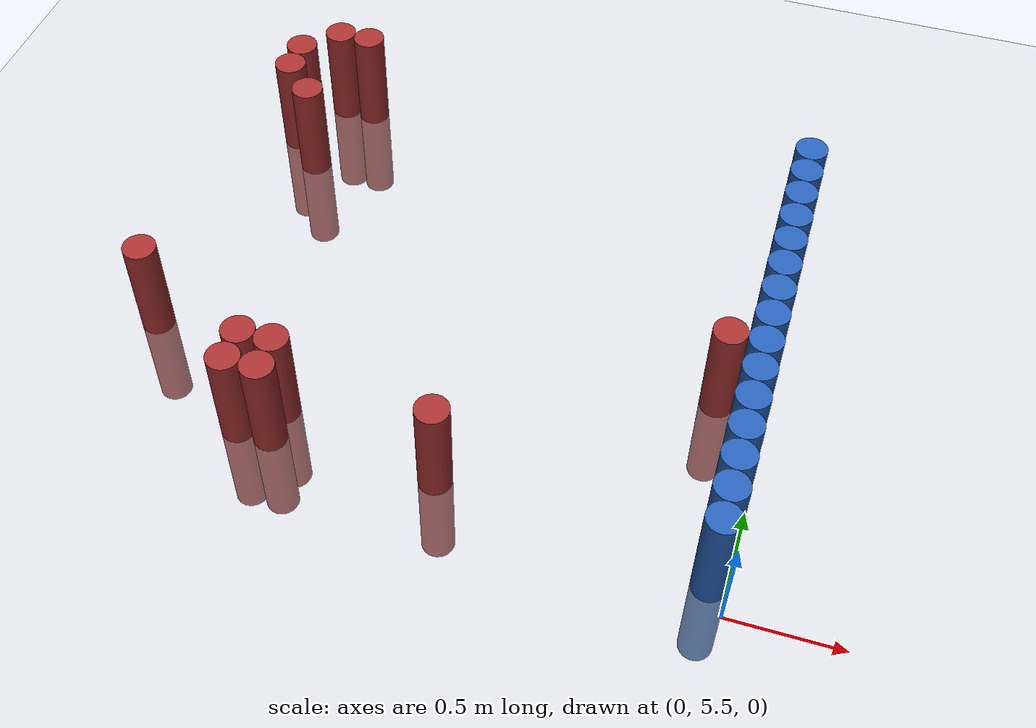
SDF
<sdf version="1.6">
 <world name="world_197">
  <model name="ground_plane">
   <static>1</static>
   <link name="link">
    <collision name="collision">
     <geometry><plane><normal>0 0 1</normal><size>100 100</size></plane></geometry>
     <surface><friction><ode><mu>100</mu><mu2>50</mu2></ode></friction></surface>
    </collision>
    <visual name="visual">
     <cast_shadows>0</cast_shadows>
     <geometry><plane><normal>0 0 1</normal><size>100 100</size></plane></geometry>
     <material>
      <script><uri>file://media/materials/scripts/gazebo.material</uri><name>Gazebo/Grey</name></script>
     </material>
    </visual>
   </link>
  </model>
  <model name="unit_cylinder_154">
   <static>1</static>
   <pose>-2.775000 6.225000 0.000000 0.000000 0.000000 0.000000</pose>
   <link name="link">
    <inertial>
     <mass>1</mass>
     <inertia><ixx>0.145833</ixx><ixy>0</ixy><ixz>0</ixz><iyy>0.145833</iyy><iyz>0</iyz><izz>0.125</izz></inertia>
    </inertial>
    <collision name="collision">
     <geometry><cylinder><radius>0.075000</radius><length>1</length></cylinder></geometry>
    </collision>
    <visual name="visual">
     <geometry><cylinder><radius>0.075000</radius><length>1</length></cylinder></geometry>
     <material>
      <ambient>0.648000 0.192000 0.192000 1</ambient>
      <diffuse>0.648000 0.192000 0.192000 1</diffuse>
     </material>
     <material>
      <script><name>Gazebo/Grey</name><uri>file://media/materials/scripts/gazebo.material</uri></script>
     </material>
    </visual>
   </link>
  </model>
  <model name="unit_cylinder_155">
   <static>1</static>
   <pose>-2.625000 7.575000 0.000000 0.000000 0.000000 0.000000</pose>
   <link name="link">
    <inertial>
     <mass>1</mass>
     <inertia><ixx>0.145833</ixx><ixy>0</ixy><ixz>0</ixz><iyy>0.145833</iyy><iyz>0</iyz><izz>0.125</izz></inertia>
    </inertial>
    <collision name="collision">
     <geometry><cylinder><radius>0.075000</radius><length>1</length></cylinder></geometry>
    </collision>
    <visual name="visual">
     <geometry><cylinder><radius>0.075000</radius><length>1</length></cylinder></geometry>
     <material>
      <ambient>0.648000 0.192000 0.192000 1</ambient>
      <diffuse>0.648000 0.192000 0.192000 1</diffuse>
     </material>
     <material>
      <script><name>Gazebo/Grey</name><uri>file://media/materials/scripts/gazebo.material</uri></script>
     </material>
    </visual>
   </link>
  </model>
  <model name="unit_cylinder_156">
   <static>1</static>
   <pose>-2.625000 7.725000 0.000000 0.000000 0.000000 0.000000</pose>
   <link name="link">
    <inertial>
     <mass>1</mass>
     <inertia><ixx>0.145833</ixx><ixy>0</ixy><ixz>0</ixz><iyy>0.145833</iyy><iyz>0</iyz><izz>0.125</izz></inertia>
    </inertial>
    <collision name="collision">
     <geometry><cylinder><radius>0.075000</radius><length>1</length></cylinder></geometry>
    </collision>
    <visual name="visual">
     <geometry><cylinder><radius>0.075000</radius><length>1</length></cylinder></geometry>
     <material>
      <ambient>0.648000 0.192000 0.192000 1</ambient>
      <diffuse>0.648000 0.192000 0.192000 1</diffuse>
     </material>
     <material>
      <script><name>Gazebo/Grey</name><uri>file://media/materials/scripts/gazebo.material</uri></script>
     </material>
    </visual>
   </link>
  </model>
  <model name="unit_cylinder_157">
   <static>1</static>
   <pose>-2.475000 7.425000 0.000000 0.000000 0.000000 0.000000</pose>
   <link name="link">
    <inertial>
     <mass>1</mass>
     <inertia><ixx>0.145833</ixx><ixy>0</ixy><ixz>0</ixz><iyy>0.145833</iyy><iyz>0</iyz><izz>0.125</izz></inertia>
    </inertial>
    <collision name="collision">
     <geometry><cylinder><radius>0.075000</radius><length>1</length></cylinder></geometry>
    </collision>
    <visual name="visual">
     <geometry><cylinder><radius>0.075000</radius><length>1</length></cylinder></geometry>
     <material>
      <ambient>0.648000 0.192000 0.192000 1</ambient>
      <diffuse>0.648000 0.192000 0.192000 1</diffuse>
     </material>
     <material>
      <script><name>Gazebo/Grey</name><uri>file://media/materials/scripts/gazebo.material</uri></script>
     </material>
    </visual>
   </link>
  </model>
  <model name="unit_cylinder_158">
   <static>1</static>
   <pose>-2.475000 7.875000 0.000000 0.000000 0.000000 0.000000</pose>
   <link name="link">
    <inertial>
     <mass>1</mass>
     <inertia><ixx>0.145833</ixx><ixy>0</ixy><ixz>0</ixz><iyy>0.145833</iyy><iyz>0</iyz><izz>0.125</izz></inertia>
    </inertial>
    <collision name="collision">
     <geometry><cylinder><radius>0.075000</radius><length>1</length></cylinder></geometry>
    </collision>
    <visual name="visual">
     <geometry><cylinder><radius>0.075000</radius><length>1</length></cylinder></geometry>
     <material>
      <ambient>0.648000 0.192000 0.192000 1</ambient>
      <diffuse>0.648000 0.192000 0.192000 1</diffuse>
     </material>
     <material>
      <script><name>Gazebo/Grey</name><uri>file://media/materials/scripts/gazebo.material</uri></script>
     </material>
    </visual>
   </link>
  </model>
  <model name="unit_cylinder_159">
   <static>1</static>
   <pose>-2.325000 7.875000 0.000000 0.000000 0.000000 0.000000</pose>
   <link name="link">
    <inertial>
     <mass>1</mass>
     <inertia><ixx>0.145833</ixx><ixy>0</ixy><ixz>0</ixz><iyy>0.145833</iyy><iyz>0</iyz><izz>0.125</izz></inertia>
    </inertial>
    <collision name="collision">
     <geometry><cylinder><radius>0.075000</radius><length>1</length></cylinder></geometry>
    </collision>
    <visual name="visual">
     <geometry><cylinder><radius>0.075000</radius><length>1</length></cylinder></geometry>
     <material>
      <ambient>0.648000 0.192000 0.192000 1</ambient>
      <diffuse>0.648000 0.192000 0.192000 1</diffuse>
     </material>
     <material>
      <script><name>Gazebo/Grey</name><uri>file://media/materials/scripts/gazebo.material</uri></script>
     </material>
    </visual>
   </link>
  </model>
  <model name="unit_cylinder_161">
   <static>1</static>
   <pose>-2.175000 5.775000 0.000000 0.000000 0.000000 0.000000</pose>
   <link name="link">
    <inertial>
     <mass>1</mass>
     <inertia><ixx>0.145833</ixx><ixy>0</ixy><ixz>0</ixz><iyy>0.145833</iyy><iyz>0</iyz><izz>0.125</izz></inertia>
    </inertial>
    <collision name="collision">
     <geometry><cylinder><radius>0.075000</radius><length>1</length></cylinder></geometry>
    </collision>
    <visual name="visual">
     <geometry><cylinder><radius>0.075000</radius><length>1</length></cylinder></geometry>
     <material>
      <ambient>0.648000 0.192000 0.192000 1</ambient>
      <diffuse>0.648000 0.192000 0.192000 1</diffuse>
     </material>
     <material>
      <script><name>Gazebo/Grey</name><uri>file://media/materials/scripts/gazebo.material</uri></script>
     </material>
    </visual>
   </link>
  </model>
  <model name="unit_cylinder_162">
   <static>1</static>
   <pose>-2.175000 5.925000 0.000000 0.000000 0.000000 0.000000</pose>
   <link name="link">
    <inertial>
     <mass>1</mass>
     <inertia><ixx>0.145833</ixx><ixy>0</ixy><ixz>0</ixz><iyy>0.145833</iyy><iyz>0</iyz><izz>0.125</izz></inertia>
    </inertial>
    <collision name="collision">
     <geometry><cylinder><radius>0.075000</radius><length>1</length></cylinder></geometry>
    </collision>
    <visual name="visual">
     <geometry><cylinder><radius>0.075000</radius><length>1</length></cylinder></geometry>
     <material>
      <ambient>0.648000 0.192000 0.192000 1</ambient>
      <diffuse>0.648000 0.192000 0.192000 1</diffuse>
     </material>
     <material>
      <script><name>Gazebo/Grey</name><uri>file://media/materials/scripts/gazebo.material</uri></script>
     </material>
    </visual>
   </link>
  </model>
  <model name="unit_cylinder_165">
   <static>1</static>
   <pose>-2.025000 5.775000 0.000000 0.000000 0.000000 0.000000</pose>
   <link name="link">
    <inertial>
     <mass>1</mass>
     <inertia><ixx>0.145833</ixx><ixy>0</ixy><ixz>0</ixz><iyy>0.145833</iyy><iyz>0</iyz><izz>0.125</izz></inertia>
    </inertial>
    <collision name="collision">
     <geometry><cylinder><radius>0.075000</radius><length>1</length></cylinder></geometry>
    </collision>
    <visual name="visual">
     <geometry><cylinder><radius>0.075000</radius><length>1</length></cylinder></geometry>
     <material>
      <ambient>0.648000 0.192000 0.192000 1</ambient>
      <diffuse>0.648000 0.192000 0.192000 1</diffuse>
     </material>
     <material>
      <script><name>Gazebo/Grey</name><uri>file://media/materials/scripts/gazebo.material</uri></script>
     </material>
    </visual>
   </link>
  </model>
  <model name="unit_cylinder_166">
   <static>1</static>
   <pose>-2.025000 5.925000 0.000000 0.000000 0.000000 0.000000</pose>
   <link name="link">
    <inertial>
     <mass>1</mass>
     <inertia><ixx>0.145833</ixx><ixy>0</ixy><ixz>0</ixz><iyy>0.145833</iyy><iyz>0</iyz><izz>0.125</izz></inertia>
    </inertial>
    <collision name="collision">
     <geometry><cylinder><radius>0.075000</radius><length>1</length></cylinder></geometry>
    </collision>
    <visual name="visual">
     <geometry><cylinder><radius>0.075000</radius><length>1</length></cylinder></geometry>
     <material>
      <ambient>0.648000 0.192000 0.192000 1</ambient>
      <diffuse>0.648000 0.192000 0.192000 1</diffuse>
     </material>
     <material>
      <script><name>Gazebo/Grey</name><uri>file://media/materials/scripts/gazebo.material</uri></script>
     </material>
    </visual>
   </link>
  </model>
  <model name="unit_cylinder_177">
   <static>1</static>
   <pose>-1.275000 5.775000 0.000000 0.000000 0.000000 0.000000</pose>
   <link name="link">
    <inertial>
     <mass>1</mass>
     <inertia><ixx>0.145833</ixx><ixy>0</ixy><ixz>0</ixz><iyy>0.145833</iyy><iyz>0</iyz><izz>0.125</izz></inertia>
    </inertial>
    <collision name="collision">
     <geometry><cylinder><radius>0.075000</radius><length>1</length></cylinder></geometry>
    </collision>
    <visual name="visual">
     <geometry><cylinder><radius>0.075000</radius><length>1</length></cylinder></geometry>
     <material>
      <ambient>0.648000 0.192000 0.192000 1</ambient>
      <diffuse>0.648000 0.192000 0.192000 1</diffuse>
     </material>
     <material>
      <script><name>Gazebo/Grey</name><uri>file://media/materials/scripts/gazebo.material</uri></script>
     </material>
    </visual>
   </link>
  </model>
  <model name="unit_cylinder_182">
   <static>1</static>
   <pose>-0.225000 6.525000 0.000000 0.000000 0.000000 0.000000</pose>
   <link name="link">
    <inertial>
     <mass>1</mass>
     <inertia><ixx>0.145833</ixx><ixy>0</ixy><ixz>0</ixz><iyy>0.145833</iyy><iyz>0</iyz><izz>0.125</izz></inertia>
    </inertial>
    <collision name="collision">
     <geometry><cylinder><radius>0.075000</radius><length>1</length></cylinder></geometry>
    </collision>
    <visual name="visual">
     <geometry><cylinder><radius>0.075000</radius><length>1</length></cylinder></geometry>
     <material>
      <ambient>0.648000 0.192000 0.192000 1</ambient>
      <diffuse>0.648000 0.192000 0.192000 1</diffuse>
     </material>
     <material>
      <script><name>Gazebo/Grey</name><uri>file://media/materials/scripts/gazebo.material</uri></script>
     </material>
    </visual>
   </link>
  </model>
  <model name="unit_cylinder_190">
   <static>1</static>
   <pose>-0.075000 5.625000 0.000000 0.000000 0.000000 0.000000</pose>
   <link name="link">
    <inertial>
     <mass>1</mass>
     <inertia><ixx>0.145833</ixx><ixy>0</ixy><ixz>0</ixz><iyy>0.145833</iyy><iyz>0</iyz><izz>0.125</izz></inertia>
    </inertial>
    <collision name="collision">
     <geometry><cylinder><radius>0.075000</radius><length>1</length></cylinder></geometry>
    </collision>
    <visual name="visual">
     <geometry><cylinder><radius>0.075000</radius><length>1</length></cylinder></geometry>
     <material>
      <ambient>0.152000 0.379000 0.720000 1</ambient>
      <diffuse>0.152000 0.379000 0.720000 1</diffuse>
     </material>
     <material>
      <script><name>Gazebo/Grey</name><uri>file://media/materials/scripts/gazebo.material</uri></script>
     </material>
    </visual>
   </link>
  </model>
  <model name="unit_cylinder_191">
   <static>1</static>
   <pose>-0.075000 5.775000 0.000000 0.000000 0.000000 0.000000</pose>
   <link name="link">
    <inertial>
     <mass>1</mass>
     <inertia><ixx>0.145833</ixx><ixy>0</ixy><ixz>0</ixz><iyy>0.145833</iyy><iyz>0</iyz><izz>0.125</izz></inertia>
    </inertial>
    <collision name="collision">
     <geometry><cylinder><radius>0.075000</radius><length>1</length></cylinder></geometry>
    </collision>
    <visual name="visual">
     <geometry><cylinder><radius>0.075000</radius><length>1</length></cylinder></geometry>
     <material>
      <ambient>0.152000 0.379000 0.720000 1</ambient>
      <diffuse>0.152000 0.379000 0.720000 1</diffuse>
     </material>
     <material>
      <script><name>Gazebo/Grey</name><uri>file://media/materials/scripts/gazebo.material</uri></script>
     </material>
    </visual>
   </link>
  </model>
  <model name="unit_cylinder_192">
   <static>1</static>
   <pose>-0.075000 5.925000 0.000000 0.000000 0.000000 0.000000</pose>
   <link name="link">
    <inertial>
     <mass>1</mass>
     <inertia><ixx>0.145833</ixx><ixy>0</ixy><ixz>0</ixz><iyy>0.145833</iyy><iyz>0</iyz><izz>0.125</izz></inertia>
    </inertial>
    <collision name="collision">
     <geometry><cylinder><radius>0.075000</radius><length>1</length></cylinder></geometry>
    </collision>
    <visual name="visual">
     <geometry><cylinder><radius>0.075000</radius><length>1</length></cylinder></geometry>
     <material>
      <ambient>0.152000 0.379000 0.720000 1</ambient>
      <diffuse>0.152000 0.379000 0.720000 1</diffuse>
     </material>
     <material>
      <script><name>Gazebo/Grey</name><uri>file://media/materials/scripts/gazebo.material</uri></script>
     </material>
    </visual>
   </link>
  </model>
  <model name="unit_cylinder_193">
   <static>1</static>
   <pose>-0.075000 6.075000 0.000000 0.000000 0.000000 0.000000</pose>
   <link name="link">
    <inertial>
     <mass>1</mass>
     <inertia><ixx>0.145833</ixx><ixy>0</ixy><ixz>0</ixz><iyy>0.145833</iyy><iyz>0</iyz><izz>0.125</izz></inertia>
    </inertial>
    <collision name="collision">
     <geometry><cylinder><radius>0.075000</radius><length>1</length></cylinder></geometry>
    </collision>
    <visual name="visual">
     <geometry><cylinder><radius>0.075000</radius><length>1</length></cylinder></geometry>
     <material>
      <ambient>0.152000 0.379000 0.720000 1</ambient>
      <diffuse>0.152000 0.379000 0.720000 1</diffuse>
     </material>
     <material>
      <script><name>Gazebo/Grey</name><uri>file://media/materials/scripts/gazebo.material</uri></script>
     </material>
    </visual>
   </link>
  </model>
  <model name="unit_cylinder_194">
   <static>1</static>
   <pose>-0.075000 6.225000 0.000000 0.000000 0.000000 0.000000</pose>
   <link name="link">
    <inertial>
     <mass>1</mass>
     <inertia><ixx>0.145833</ixx><ixy>0</ixy><ixz>0</ixz><iyy>0.145833</iyy><iyz>0</iyz><izz>0.125</izz></inertia>
    </inertial>
    <collision name="collision">
     <geometry><cylinder><radius>0.075000</radius><length>1</length></cylinder></geometry>
    </collision>
    <visual name="visual">
     <geometry><cylinder><radius>0.075000</radius><length>1</length></cylinder></geometry>
     <material>
      <ambient>0.152000 0.379000 0.720000 1</ambient>
      <diffuse>0.152000 0.379000 0.720000 1</diffuse>
     </material>
     <material>
      <script><name>Gazebo/Grey</name><uri>file://media/materials/scripts/gazebo.material</uri></script>
     </material>
    </visual>
   </link>
  </model>
  <model name="unit_cylinder_195">
   <static>1</static>
   <pose>-0.075000 6.375000 0.000000 0.000000 0.000000 0.000000</pose>
   <link name="link">
    <inertial>
     <mass>1</mass>
     <inertia><ixx>0.145833</ixx><ixy>0</ixy><ixz>0</ixz><iyy>0.145833</iyy><iyz>0</iyz><izz>0.125</izz></inertia>
    </inertial>
    <collision name="collision">
     <geometry><cylinder><radius>0.075000</radius><length>1</length></cylinder></geometry>
    </collision>
    <visual name="visual">
     <geometry><cylinder><radius>0.075000</radius><length>1</length></cylinder></geometry>
     <material>
      <ambient>0.152000 0.379000 0.720000 1</ambient>
      <diffuse>0.152000 0.379000 0.720000 1</diffuse>
     </material>
     <material>
      <script><name>Gazebo/Grey</name><uri>file://media/materials/scripts/gazebo.material</uri></script>
     </material>
    </visual>
   </link>
  </model>
  <model name="unit_cylinder_196">
   <static>1</static>
   <pose>-0.075000 6.525000 0.000000 0.000000 0.000000 0.000000</pose>
   <link name="link">
    <inertial>
     <mass>1</mass>
     <inertia><ixx>0.145833</ixx><ixy>0</ixy><ixz>0</ixz><iyy>0.145833</iyy><iyz>0</iyz><izz>0.125</izz></inertia>
    </inertial>
    <collision name="collision">
     <geometry><cylinder><radius>0.075000</radius><length>1</length></cylinder></geometry>
    </collision>
    <visual name="visual">
     <geometry><cylinder><radius>0.075000</radius><length>1</length></cylinder></geometry>
     <material>
      <ambient>0.152000 0.379000 0.720000 1</ambient>
      <diffuse>0.152000 0.379000 0.720000 1</diffuse>
     </material>
     <material>
      <script><name>Gazebo/Grey</name><uri>file://media/materials/scripts/gazebo.material</uri></script>
     </material>
    </visual>
   </link>
  </model>
  <model name="unit_cylinder_197">
   <static>1</static>
   <pose>-0.075000 6.675000 0.000000 0.000000 0.000000 0.000000</pose>
   <link name="link">
    <inertial>
     <mass>1</mass>
     <inertia><ixx>0.145833</ixx><ixy>0</ixy><ixz>0</ixz><iyy>0.145833</iyy><iyz>0</iyz><izz>0.125</izz></inertia>
    </inertial>
    <collision name="collision">
     <geometry><cylinder><radius>0.075000</radius><length>1</length></cylinder></geometry>
    </collision>
    <visual name="visual">
     <geometry><cylinder><radius>0.075000</radius><length>1</length></cylinder></geometry>
     <material>
      <ambient>0.152000 0.379000 0.720000 1</ambient>
      <diffuse>0.152000 0.379000 0.720000 1</diffuse>
     </material>
     <material>
      <script><name>Gazebo/Grey</name><uri>file://media/materials/scripts/gazebo.material</uri></script>
     </material>
    </visual>
   </link>
  </model>
  <model name="unit_cylinder_198">
   <static>1</static>
   <pose>-0.075000 6.825000 0.000000 0.000000 0.000000 0.000000</pose>
   <link name="link">
    <inertial>
     <mass>1</mass>
     <inertia><ixx>0.145833</ixx><ixy>0</ixy><ixz>0</ixz><iyy>0.145833</iyy><iyz>0</iyz><izz>0.125</izz></inertia>
    </inertial>
    <collision name="collision">
     <geometry><cylinder><radius>0.075000</radius><length>1</length></cylinder></geometry>
    </collision>
    <visual name="visual">
     <geometry><cylinder><radius>0.075000</radius><length>1</length></cylinder></geometry>
     <material>
      <ambient>0.152000 0.379000 0.720000 1</ambient>
      <diffuse>0.152000 0.379000 0.720000 1</diffuse>
     </material>
     <material>
      <script><name>Gazebo/Grey</name><uri>file://media/materials/scripts/gazebo.material</uri></script>
     </material>
    </visual>
   </link>
  </model>
  <model name="unit_cylinder_199">
   <static>1</static>
   <pose>-0.075000 6.975000 0.000000 0.000000 0.000000 0.000000</pose>
   <link name="link">
    <inertial>
     <mass>1</mass>
     <inertia><ixx>0.145833</ixx><ixy>0</ixy><ixz>0</ixz><iyy>0.145833</iyy><iyz>0</iyz><izz>0.125</izz></inertia>
    </inertial>
    <collision name="collision">
     <geometry><cylinder><radius>0.075000</radius><length>1</length></cylinder></geometry>
    </collision>
    <visual name="visual">
     <geometry><cylinder><radius>0.075000</radius><length>1</length></cylinder></geometry>
     <material>
      <ambient>0.152000 0.379000 0.720000 1</ambient>
      <diffuse>0.152000 0.379000 0.720000 1</diffuse>
     </material>
     <material>
      <script><name>Gazebo/Grey</name><uri>file://media/materials/scripts/gazebo.material</uri></script>
     </material>
    </visual>
   </link>
  </model>
  <model name="unit_cylinder_200">
   <static>1</static>
   <pose>-0.075000 7.125000 0.000000 0.000000 0.000000 0.000000</pose>
   <link name="link">
    <inertial>
     <mass>1</mass>
     <inertia><ixx>0.145833</ixx><ixy>0</ixy><ixz>0</ixz><iyy>0.145833</iyy><iyz>0</iyz><izz>0.125</izz></inertia>
    </inertial>
    <collision name="collision">
     <geometry><cylinder><radius>0.075000</radius><length>1</length></cylinder></geometry>
    </collision>
    <visual name="visual">
     <geometry><cylinder><radius>0.075000</radius><length>1</length></cylinder></geometry>
     <material>
      <ambient>0.152000 0.379000 0.720000 1</ambient>
      <diffuse>0.152000 0.379000 0.720000 1</diffuse>
     </material>
     <material>
      <script><name>Gazebo/Grey</name><uri>file://media/materials/scripts/gazebo.material</uri></script>
     </material>
    </visual>
   </link>
  </model>
  <model name="unit_cylinder_201">
   <static>1</static>
   <pose>-0.075000 7.275000 0.000000 0.000000 0.000000 0.000000</pose>
   <link name="link">
    <inertial>
     <mass>1</mass>
     <inertia><ixx>0.145833</ixx><ixy>0</ixy><ixz>0</ixz><iyy>0.145833</iyy><iyz>0</iyz><izz>0.125</izz></inertia>
    </inertial>
    <collision name="collision">
     <geometry><cylinder><radius>0.075000</radius><length>1</length></cylinder></geometry>
    </collision>
    <visual name="visual">
     <geometry><cylinder><radius>0.075000</radius><length>1</length></cylinder></geometry>
     <material>
      <ambient>0.152000 0.379000 0.720000 1</ambient>
      <diffuse>0.152000 0.379000 0.720000 1</diffuse>
     </material>
     <material>
      <script><name>Gazebo/Grey</name><uri>file://media/materials/scripts/gazebo.material</uri></script>
     </material>
    </visual>
   </link>
  </model>
  <model name="unit_cylinder_202">
   <static>1</static>
   <pose>-0.075000 7.425000 0.000000 0.000000 0.000000 0.000000</pose>
   <link name="link">
    <inertial>
     <mass>1</mass>
     <inertia><ixx>0.145833</ixx><ixy>0</ixy><ixz>0</ixz><iyy>0.145833</iyy><iyz>0</iyz><izz>0.125</izz></inertia>
    </inertial>
    <collision name="collision">
     <geometry><cylinder><radius>0.075000</radius><length>1</length></cylinder></geometry>
    </collision>
    <visual name="visual">
     <geometry><cylinder><radius>0.075000</radius><length>1</length></cylinder></geometry>
     <material>
      <ambient>0.152000 0.379000 0.720000 1</ambient>
      <diffuse>0.152000 0.379000 0.720000 1</diffuse>
     </material>
     <material>
      <script><name>Gazebo/Grey</name><uri>file://media/materials/scripts/gazebo.material</uri></script>
     </material>
    </visual>
   </link>
  </model>
  <model name="unit_cylinder_203">
   <static>1</static>
   <pose>-0.075000 7.575000 0.000000 0.000000 0.000000 0.000000</pose>
   <link name="link">
    <inertial>
     <mass>1</mass>
     <inertia><ixx>0.145833</ixx><ixy>0</ixy><ixz>0</ixz><iyy>0.145833</iyy><iyz>0</iyz><izz>0.125</izz></inertia>
    </inertial>
    <collision name="collision">
     <geometry><cylinder><radius>0.075000</radius><length>1</length></cylinder></geometry>
    </collision>
    <visual name="visual">
     <geometry><cylinder><radius>0.075000</radius><length>1</length></cylinder></geometry>
     <material>
      <ambient>0.152000 0.379000 0.720000 1</ambient>
      <diffuse>0.152000 0.379000 0.720000 1</diffuse>
     </material>
     <material>
      <script><name>Gazebo/Grey</name><uri>file://media/materials/scripts/gazebo.material</uri></script>
     </material>
    </visual>
   </link>
  </model>
  <model name="unit_cylinder_204">
   <static>1</static>
   <pose>-0.075000 7.725000 0.000000 0.000000 0.000000 0.000000</pose>
   <link name="link">
    <inertial>
     <mass>1</mass>
     <inertia><ixx>0.145833</ixx><ixy>0</ixy><ixz>0</ixz><iyy>0.145833</iyy><iyz>0</iyz><izz>0.125</izz></inertia>
    </inertial>
    <collision name="collision">
     <geometry><cylinder><radius>0.075000</radius><length>1</length></cylinder></geometry>
    </collision>
    <visual name="visual">
     <geometry><cylinder><radius>0.075000</radius><length>1</length></cylinder></geometry>
     <material>
      <ambient>0.152000 0.379000 0.720000 1</ambient>
      <diffuse>0.152000 0.379000 0.720000 1</diffuse>
     </material>
     <material>
      <script><name>Gazebo/Grey</name><uri>file://media/materials/scripts/gazebo.material</uri></script>
     </material>
    </visual>
   </link>
  </model>
 </world>
</sdf>
